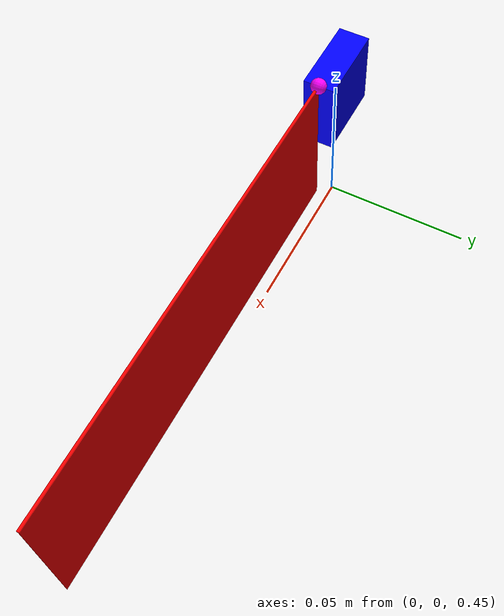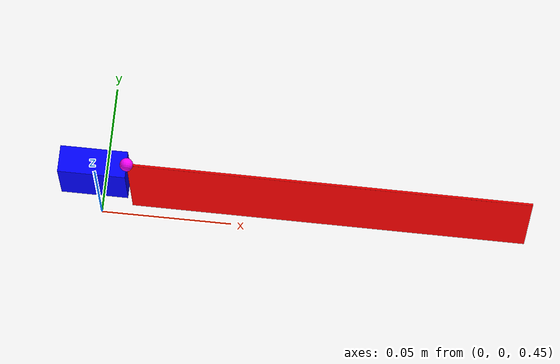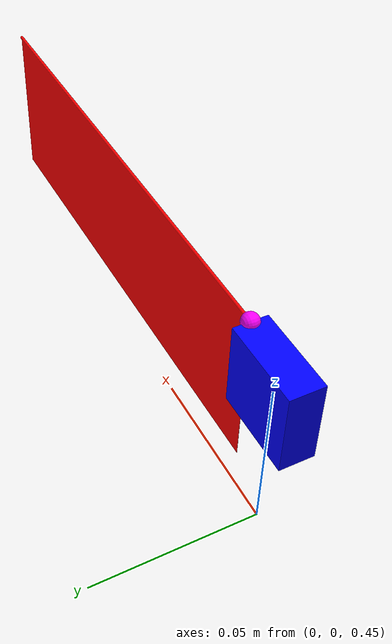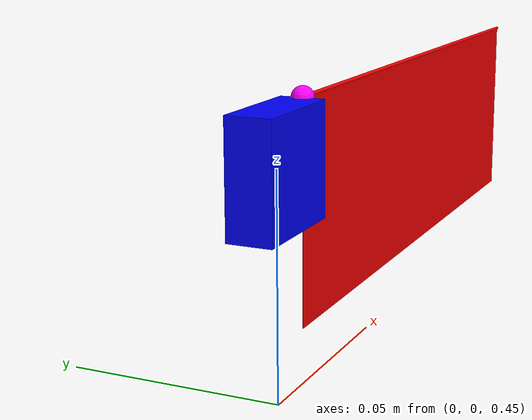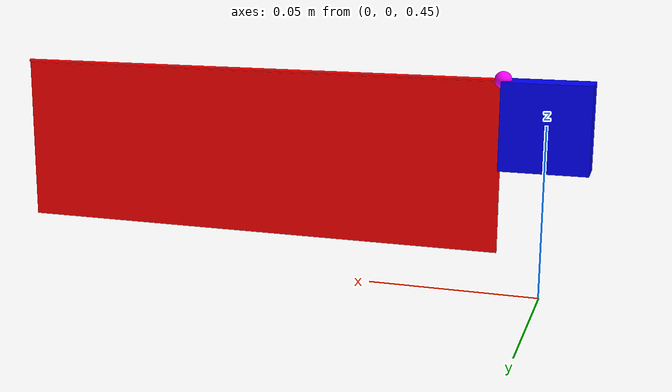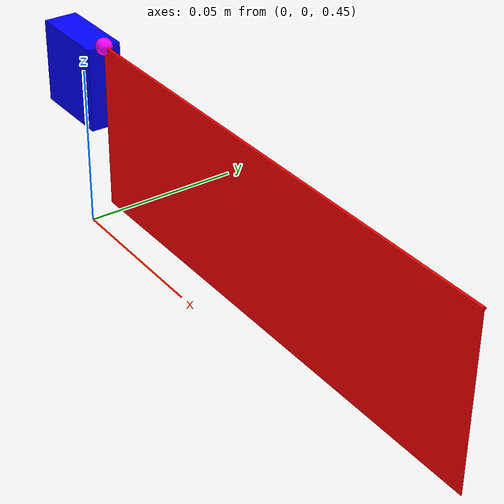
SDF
<?xml version="1.0" ?>
<sdf version="1.8">
    <world name="world2">
        <physics name="1ms" type="ignored">
            <max_step_size>0.0001</max_step_size>
            <real_time_factor> 1</real_time_factor>
        </physics>
        <plugin filename="libignition-gazebo-physics-system.so" name="ignition::gazebo::systems::Physics">
        </plugin>
        <plugin filename="libignition-gazebo-user-commands-system.so" name="ignition::gazebo::systems::UserCommands">
        </plugin>
        <plugin filename="libignition-gazebo-scene-broadcaster-system.so" name="ignition::gazebo::systems::SceneBroadcaster">
        </plugin>
        <light type="directional" name="sun">
            <cast_shadows>true</cast_shadows>
            <pose>0 0 10 0 0 0</pose>
            <diffuse>0.8 0.8 0.8 1</diffuse>
            <specular>0.2 0.2 0.2 1</specular>
            <attenuation>
                <range>1000</range>
                <constant>0.9</constant>
                <linear>0.01</linear>
                <quadratic>0.001</quadratic>
            </attenuation>
            <direction>-0.5 0.1 -0.9</direction>
        </light>
        <model name="ground_plane">
            <pose relative_to="world">0 0 0 0 0 0</pose>
            <static>true</static>
            <link name="link">
                <collision name="link">
                    <geometry>
                        <plane>
                            <normal>0 0 1</normal>
                        </plane>
                    </geometry>
                </collision>
                <visual name="link">
                    <geometry>
                        <plane>
                            <normal>0 0 1</normal>
                            <size>100 100</size>
                        </plane>
                    </geometry>
                    <material>
                        <ambient>0.8 0.8 0.8 1</ambient>
                        <diffuse>0.8 0.8 0.8 1</diffuse>
                        <specular>0.8 0.8 0.8 1</specular>
                    </material>
                </visual>
            </link>
        </model>
        <model name="URDF_LargeWings">
            <pose relative_to="world">0 0 .5 1.5708 0 0</pose>
            <link name="body">
                <pose>0 0 0 0 0 0</pose>
                <inertial>
                    <pose>0 0 0 0 0 0</pose>
                    <mass>1.0</mass>
                    <inertia>
                        <ixx>0.1</ixx>
                        <ixy>0</ixy>
                        <ixz>0</ixz>
                        <iyy>0.1</iyy>
                        <iyz>0</iyz>
                        <izz>0.2</izz>
                    </inertia>
                </inertial>
                <visual name="body">
                    <pose>0 0 0 0 0 0</pose>
                    <geometry>
                        <box>
                            <size>0.025 0.025 0.01</size>
                        </box>
                    </geometry>
                    <material>
                        <ambient>0.0 0.0 1.0 1</ambient>
                        <diffuse>0.0 0.0 1.0 1</diffuse>
                        <specular>0.0 0.0 1.0 1</specular>
                    </material>
                </visual>
            </link>
            <link name="hinge">
                <pose relative_to="stroke_joint">0 0 0 0 0 0</pose>
                <inertial>
                    <mass>0.5</mass>
                    <inertia>
                        <ixx>0.05</ixx>
                        <ixy>0</ixy>
                        <ixz>0</ixz>
                        <iyy>0.05</iyy>
                        <iyz>0</iyz>
                        <izz>0.1</izz>
                    </inertia>
                </inertial>
                <visual name="hinge">
                    <pose relative_to="stroke_joint">0 0 0 0 0 0</pose>
                    <geometry>
                        <sphere>
                            <radius>0.0025</radius>
                        </sphere>
                    </geometry>
                    <material>
                        <ambient>1.0 0.0 1.0 .9</ambient>
                        <diffuse>1.0 0.0 1.0 .9</diffuse>
                        <specular>1.0 0.0 1.0 .9</specular>
                    </material>
                </visual>
            </link>
            <link name="wing">
                <pose relative_to="pitch_joint">0 0 0 0 0 0</pose>
                <inertial>
                    <pose relative_to="pitch_joint">0.05945545453052161, 0, -0.03597263888384742, 0, 0, 0</pose>
                    <mass>0.0003441871893769074</mass>
                    <inertia>
                        <ixx>6.607277588050747e-07</ixx>
                        <ixy>0.0</ixy>
                        <ixz>-3.951453081269215e-08</ixz>
                        <iyy>8.671770066029521e-07</iyy>
                        <iyz>0.0</iyz>
                        <izz>2.0645585500939326e-07</izz>
                    </inertia>
                </inertial>
                <visual name="wing">
                    <pose relative_to="pitch_joint">0 0 0 0 0 0</pose>
                    <geometry>
                        <mesh>
                            <uri>model://URDF_LargeWings/meshes/RW_Pitch.STL</uri>
                        </mesh>
                    </geometry>
                    <material>
                        <ambient>1.0 0.0 0.0 .9</ambient>
                        <diffuse>1.0 0.0 0.0 .9</diffuse>
                        <specular>1.0 0.0 0.0 .9</specular>
                    </material>
                </visual>
                <collision name="wing">
                    <pose relative_to="pitch_joint">0 0 0 0 0 0</pose>
                    <geometry>
                        <mesh>
                            <uri>model://URDF_LargeWings/meshes/RW_Pitch.STL</uri>
                        </mesh>
                    </geometry>
                </collision>
            </link>
            <joint name="anchor2" type="revolute">
                <pose relative_to="body">0 0 0 0 0 0</pose>
                <parent>world</parent>
                <child>body</child>
                <axis>
                    <xyz>0 1 0</xyz>
                    <limit>
                        <effort>0</effort>
                        <lower>0</lower>
                        <upper>0</upper>
                    </limit>
                </axis>
            </joint>
            <joint name="pitch_joint" type="revolute">
                <pose relative_to="hinge">0 0 0 0 0 0</pose>
                <parent>hinge</parent>
                <child>wing</child>
                <axis>
                    <xyz>1 0 0</xyz>
                    <dynamics>
                        <damping>0.002</damping>
                        <spring_stiffness>.18</spring_stiffness>
                    </dynamics>
                    <limit>
                        <effort>0</effort>
                        <lower>-1.79769e+8</lower>
                        <upper>1.79769e+8</upper>
                    </limit>
                </axis>
            </joint>
            <joint name="stroke_joint" type="revolute">
                <pose relative_to="body">0.0125 0.0125 0 0 0 0</pose>
                <parent>body</parent>
                <child>hinge</child>
                <axis>
                    <xyz>0 1 0</xyz>
                    <dynamics>
                        <damping>.001</damping>
                        <spring_stiffness>5</spring_stiffness>
                    </dynamics>
                    <limit>
                        <lower>-1.79769e+5</lower>
                        <upper>1.79769e+5</upper>
                    </limit>
                </axis>
            </joint>
            <plugin filename="aero_state_plugins" name="aerodynamics">
                <data_file_path>/home/darin/Github/ros2-gazebo-drake-sims/flapping_proj/optimization/data/aero.csv</data_file_path>
                <only_data>false</only_data>
                <link>
                    <link_name>wing</link_name>
                    <link_type>wing</link_type>
                    <stall_angle>15</stall_angle>
                    <fluid_density>1.293</fluid_density>
                    <drag_coefficient>1.28</drag_coefficient>
                    <lift_coefficient>1</lift_coefficient>
                    <control_joint>stroke_joint</control_joint>
                    <wing_pitch_joint>pitch_joint</wing_pitch_joint>
                    <blades>15</blades>
                    <center_pressure_list>0.027126999033821098, -0.0029479570662285853, 0, 0.03312694978529774, -0.008120158799818054, 0, 0.03912690053677438, -0.013292360533407523, 0, 0.04512685128825103, -0.01846456226699699, 0, 0.05112680203972768, -0.02363676400058646, 0, 0.05712675279120432, -0.028808965734175924, 0, 0.06312670354268096, -0.033981167467765395, 0, 0.06912665429415761, -0.039153369201354864, 0, 0.07513160481228888, -0.03396469449404887, 0, 0.08113655533042013, -0.02877601978674287, 0, 0.0871415058485514, -0.02358734507943687, 0, 0.09314645636668267, -0.018398670372130874, 0, 0.09915140688481394, -0.013209995664824867, 0, 0.10515635740294521, -0.008021320957518872, 0, 0.11116130792107648, -0.0028326462502128724, 0</center_pressure_list>
                    <upward_vector_list>0,0,1, 0,0,1, 0,0,1, 0,0,1, 0,0,1, 0,0,1, 0,0,1, 0,0,1, 0,0,1, 0,0,1, 0,0,1, 0,0,1, 0,0,1, 0,0,1, 0,0,1</upward_vector_list>
                    <chord_direction_list>0,0,1, 0,0,1, 0,0,1, 0,0,1, 0,0,1, 0,0,1, 0,0,1, 0,0,1, 0,0,1, 0,0,1, 0,0,1, 0,0,1, 0,0,1, 0,0,1, 0,0,1</chord_direction_list>
                    <blade_area_list>7.075038885935635e-05, 0.00019488221157231211, 0.00031901403428526766, 0.00044314585699822335, 0.000567277679711179, 0.0006914095024241347, 0.0008155413251370895, 0.0009400646632695462, 0.0008158252392008361, 0.0006911942997126273, 0.0005665633602244219, 0.0004419324207362149, 0.00031730148124800686, 0.00019267054175980063, 6.803960227159354e-05</blade_area_list>
                </link>
            </plugin>
            <plugin filename="aero_state_plugins" name="odometry_state">
                <world_name>world2</world_name>
                <odometry_topic>/odom</odometry_topic>
                <odom_publish_frequency>1000.0</odom_publish_frequency>
                <joint>pitch_joint</joint>
                <joint>stroke_joint</joint>
            </plugin>
            <plugin filename="libignition-gazebo-apply-joint-force-system.so" name="ignition::gazebo::systems::ApplyJointForce">
                <joint_name>stroke_joint</joint_name>
            </plugin>
            <plugin filename="libignition-gazebo-apply-joint-force-system.so" name="ignition::gazebo::systems::ApplyJointForce">
                <joint_name>pitch_joint</joint_name>
            </plugin>
        </model>
    </world>
</sdf>
